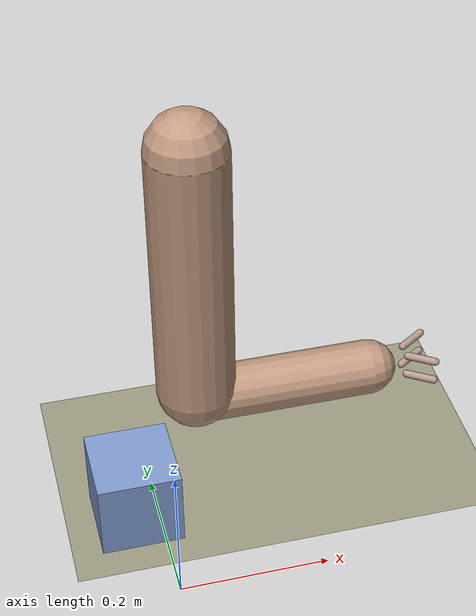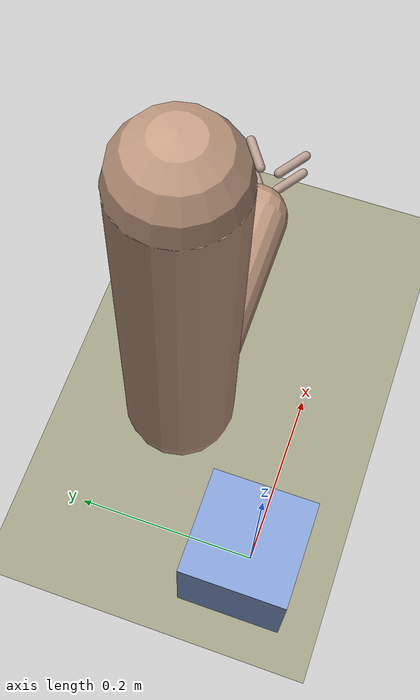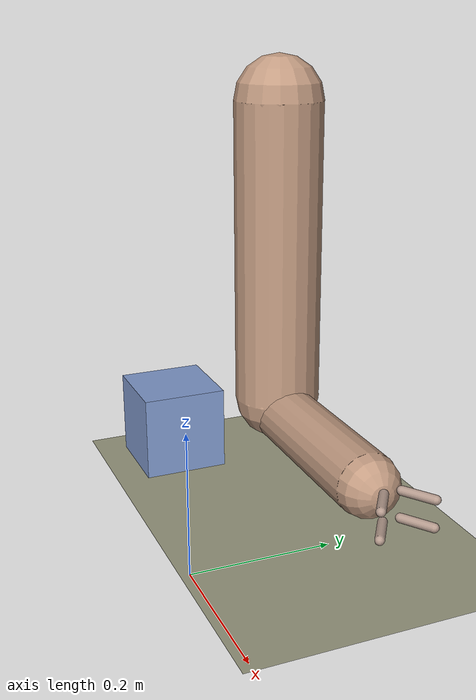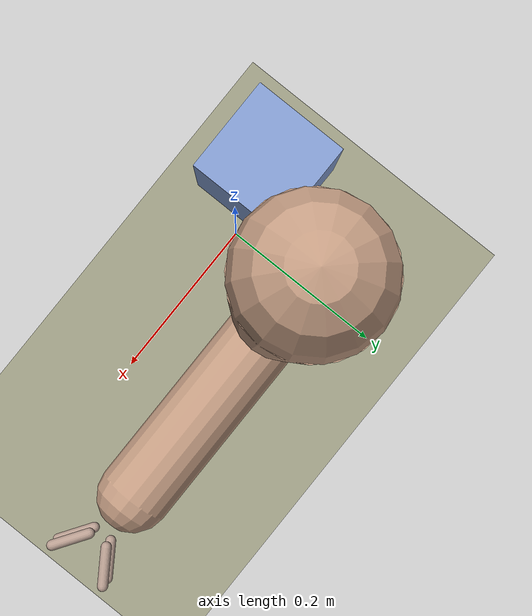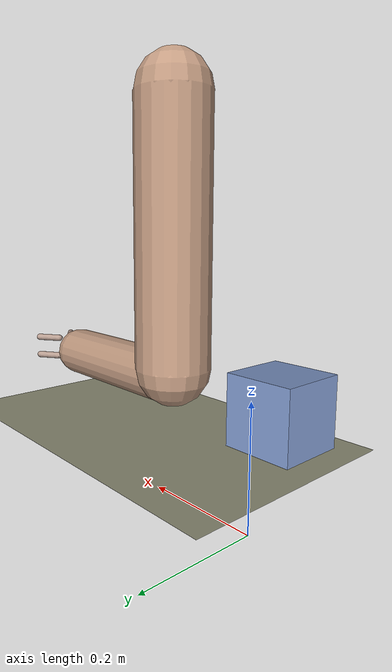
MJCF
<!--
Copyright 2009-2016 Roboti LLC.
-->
<mujoco model="arm_claw (v1.31)">
        <compiler       inertiafromgeom="auto"
                                angle="radian"/>

        <size   nuser_jnt="1"
                        nuser_geom="1"/>

        <option timestep="0.001"
                        gravity="0 0 -9.8"
                        viscosity="0"
                        iterations="20"
                        />

        <asset>
                <material name="MatGnd" specular=".3" shininess=".3" reflectance="0.0" rgba=".5 .55 .5 1"/>
        </asset>

        <default>
                <joint limited="true" damping="1" stiffness="0" armature=".1" user="0"/>
                <geom solref="0.1 100" solimp="0.95 0.95 0.01" margin="0.001" user="0" condim="4"/>
                <motor ctrllimited="true" ctrlrange="-1 1"/>
                <position ctrllimited="true"/>

                <default class='0'>
                        <geom friction="0.4 0.005 0.001" rgba=".75 .6 .5 1" contype="1" conaffinity="0"/>
                </default>

                <default class='1'>
                        <geom friction="0.4 0.005 0.001" rgba=".7 .6 .55 1" contype="1" conaffinity="0"/>
                </default>

                <default class='arm'>
                        <joint damping="5"/>
                </default>
        </default>

        <worldbody>
                <light directional="true" cutoff="40" exponent="10" diffuse=".4 .4 .4" specular=".7 .7 .7" pos="0 0 1.5" dir="0 0 -1"/>
                <geom friction="0.4 0.005 0.001" solref="0.008 1" name="tableTop" material="MatGnd" type="plane" pos="0.15 0 0.15" size="0.8 0.8 0.5" rgba=".6 .6 .5 1" contype="1" conaffinity="1"/>

                <!--  ================= ARM ================= /-->
                <body name="upperarm" pos="0.05 0.1 0.6">
                        <geom class="0" type="capsule" fromto="0 0 0 0 0 -0.345" size="0.05"/>
                        <joint class='arm' name="s_abduction" type="hinge" pos="0 0 0" axis="1 0 0" range="-1.57 .7" limited='true' user="001"/>
			<joint class='arm' name="s_flexion" type="hinge" pos="0 0 0" axis="0 -1 0" range="-.85 1.57" limited='true' user="002"/>
			<joint class='arm' name="s_rotation" type="hinge" pos="0 0 0" axis="0 0 1" range="-.85 .85" limited='true' user="003"/>

                        <body name="forearm" pos="0 0 -0.36">
                                <geom class="0" name="lower_arm" type="capsule" fromto="0 0 0 0.225 0 0" size="0.035"/>
                                <joint class='arm' name="e_flexion" type="hinge" pos="0 0 0" axis="0 -1 0" range="-1.5 1.05" limited='true' user="004"/>
                                <site name="end_effector" pos="0.225 0 0" size="0.001"/>

                                <body name="claw" pos="0.27 0 0" quat="0 1 0 0">

					<body name="rightclaw" pos=".005 -.01 0" >
						<geom name="rightclaw_it" class="1" type="capsule" fromto="0 0 0.015 .03 -.02 0.015" 	size="0.005" />
						<geom name="rightclaw_ib" class="1" type="capsule" fromto="0 0 -0.015 .03 -.02 -0.015" 	size="0.005" />
					</body>

					<body name="leftclaw" pos=".005 .01 0">
						<geom name="leftclaw_it" class="1" type="capsule" fromto="0 0 0.015 .03 .02 0.015" 	size="0.005" />
						<geom name="leftclaw_ib" class="1" type="capsule" fromto="0 0 -0.015 .03 .02 -0.015" 	size="0.005" />
					</body>

				</body>

                        </body>
                </body>

                <!--  ================= OBJECT ================= /-->
                <body name="a_object" pos="0.05 0.1 0.2">
                        <geom friction="0.4 0.005 0.001" density="4e4" type="box" name="a_box" pos="-0.1 -0.1 0" size="0.05 0.05 0.05" rgba="0.5 0.6 0.8 1" user="1" contype="0" conaffinity="1"/>
                        <joint name="a_obj" type="free" limited='false' damping="0" armature="0"/>
                </body>
        </worldbody>
        <contact>
                        <pair geom1="a_box" geom2="tableTop" solref = '0.008 1'/>
                        <pair geom1="lower_arm" geom2="tableTop" solref = '0.008 1'/>
        </contact>
        <actuator>

                <!--  ================= Torque actuators ================= /-->
                <motor joint='s_abduction'      name='As_abduction' gear="70"/>
                <motor joint='s_flexion'        name='As_flexion'       gear="70"/>
                <motor joint='s_rotation'       name='As_rotation'      gear="70"/>
                <motor joint='e_flexion'        name='Ae_flexion'       gear="49"/>

                <!--  ================= Position actuators ================= /-->

        </actuator>

</mujoco>
